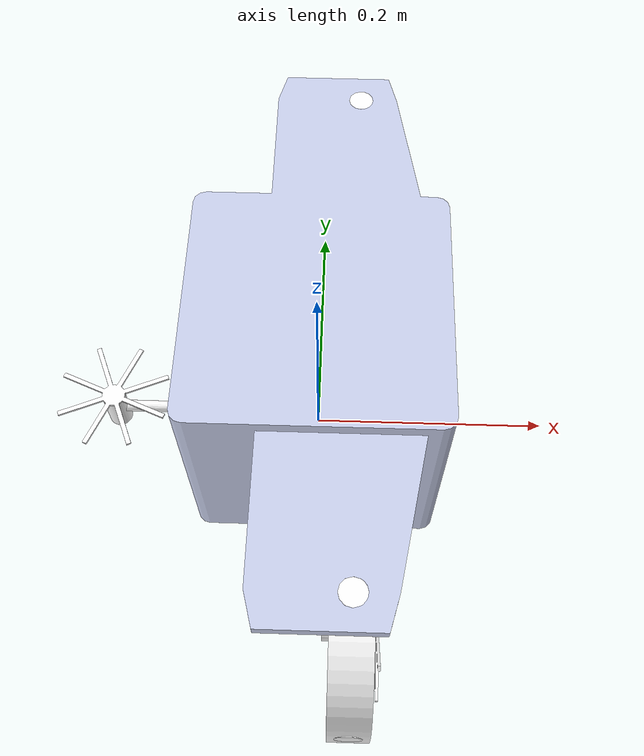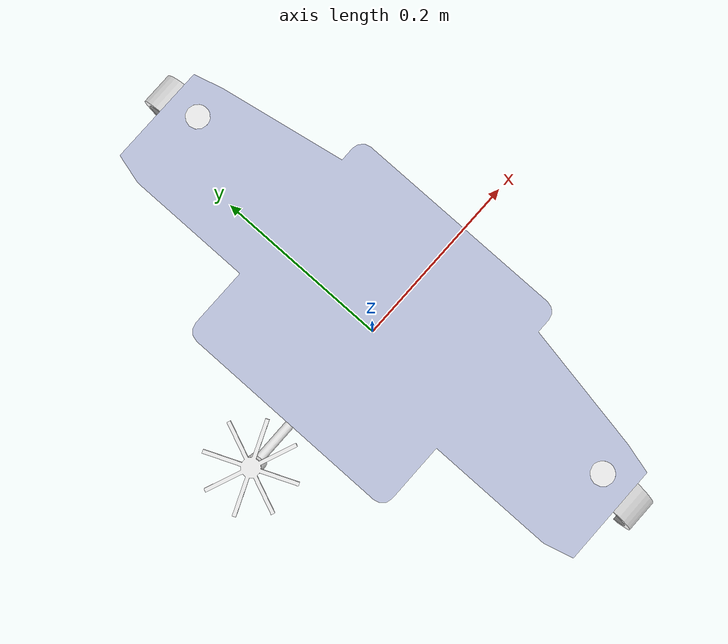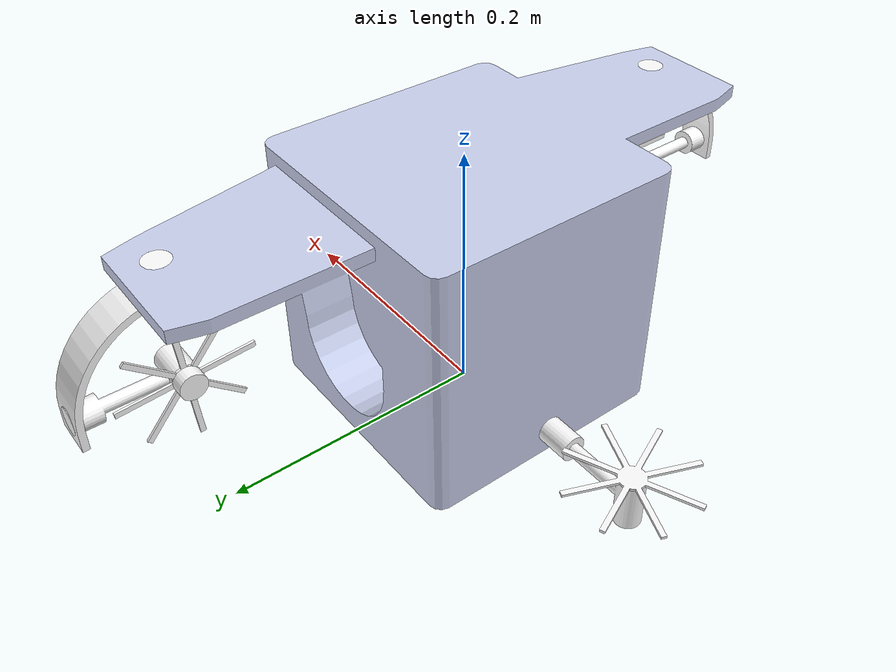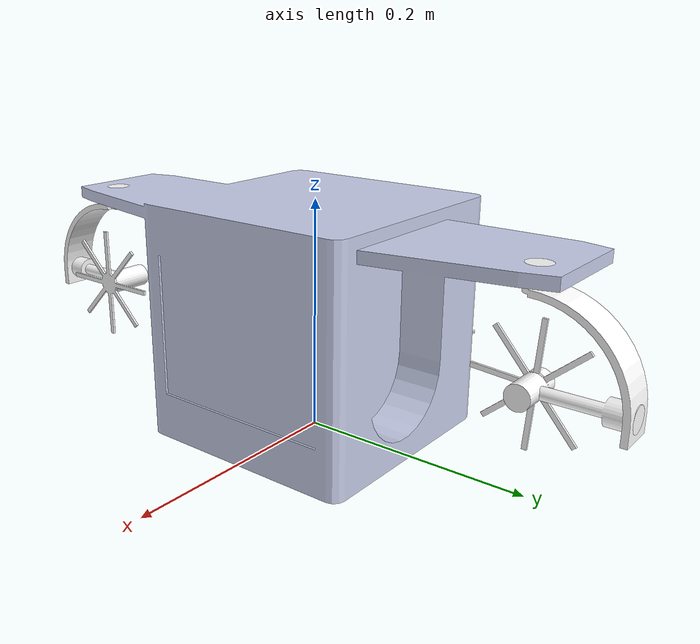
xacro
<?xml version="1.0" encoding="utf-8" ?>
<!-- |    This document was autogenerated by xacro from /home/zhitao/diskE/Project/homework1_summation/hw3_space_ws/src/mrobot_description/urdf/robot.xacro | -->
<!-- |    EDITING THIS FILE BY HAND IS NOT RECOMMENDED                                 | -->
<robot name="mrobot">
    <link name="base_link">

<inertial>
            <origin rpy="0 0 0" xyz="-0.00250187055399557 -4.16333634234434E-17 0.102093304789128" />
            <mass value="6.94149844484666" />
            <inertia ixx="0.0520196309505746" ixy="1.68127167273141E-18" ixz="-2.90897863231171E-05" iyy="0.0509630023046414" iyz="1.79335938951065E-18" izz="0.0509538546030715" />
        </inertial>

        <visual>
            <origin rpy="0 0 0" xyz="0 0 0" />
            <geometry>
                <mesh filename="package://mrobot_description/meshes/base_link.STL" />
            </geometry>
            <material name="">
                <color rgba="0.792156862745098 0.819607843137255 0.933333333333333 1" />
            </material>
        </visual>
        <collision>
            <origin rpy="0 0 0" xyz="0 0 0" />
            <geometry>
                <mesh filename="package://mrobot_description/meshes/base_link.STL" />
            </geometry>
        </collision>
    </link>
    <link name="link3_propeller_r">

<inertial>
            <origin rpy="0 0 0" xyz="0.0358547056389072 1.57481043736724E-07 0.0376222388867364" />
            <mass value="0.0232842042460977" />
            <inertia ixx="1.91884886962561E-05" ixy="-5.96973777799785E-11" ixz="-1.65633553759101E-05" iyy="3.63752103759262E-05" iyz="2.27699860606211E-11" izz="2.02836536909938E-05" />
        </inertial>

        <visual>
            <origin rpy="0 0 0" xyz="0 0 0" />
            <geometry>
                <mesh filename="package://mrobot_description/meshes/link3_propeller_r.STL" />
            </geometry>
            <material name="">
                <color rgba="1 1 1 1" />
            </material>
        </visual>
        <collision>
            <origin rpy="0 0 0" xyz="0 0 0" />
            <geometry>
                <mesh filename="package://mrobot_description/meshes/link3_propeller_r.STL" />
            </geometry>
        </collision>
    </link>
    <joint name="joint3_propeller_r" type="revolute">
        <origin rpy="3.1416 0 -1.5708" xyz="0.03 -0.21 0.19" />
        <parent link="base_link" />
        <child link="link3_propeller_r" />
        <axis xyz="0 0 -1" />
        <limit effort="4" lower="-4" upper="4" velocity="4" />
    </joint>
    <link name="link2_propeller_r">

<inertial>
            <origin rpy="0 0 0" xyz="-0.000547980281035122 5.94447525786856E-08 -0.0309642074433607" />
            <mass value="0.0217803101754596" />
            <inertia ixx="1.92811006991552E-05" ixy="7.44325461979967E-12" ixz="-2.86922802348169E-07" iyy="2.04243309946027E-05" iyz="7.14397664513597E-12" izz="2.09913107838725E-06" />
        </inertial>

        <visual>
            <origin rpy="0 0 0" xyz="0 0 0" />
            <geometry>
                <mesh filename="package://mrobot_description/meshes/link2_propeller_r.STL" />
            </geometry>
            <material name="">
                <color rgba="1 1 1 1" />
            </material>
        </visual>
        <collision>
            <origin rpy="0 0 0" xyz="0 0 0" />
            <geometry>
                <mesh filename="package://mrobot_description/meshes/link2_propeller_r.STL" />
            </geometry>
        </collision>
    </link>
    <joint name="joint2_propeller_r" type="revolute">
        <origin rpy="-1.5708 0 -1.5708" xyz="0.055 0 0.09" />
        <parent link="link3_propeller_r" />
        <child link="link2_propeller_r" />
        <axis xyz="0 0 -1" />
        <limit effort="4" lower="-4" upper="4" velocity="4" />
    </joint>
    <link name="link1_propeller_r">

<inertial>
            <origin rpy="0 0 0" xyz="-5.55111512312578E-17 2.08166817117217E-17 0.039" />
            <mass value="0.00319261117037718" />
            <inertia ixx="1.34136270464279E-06" ixy="-1.68021061924834E-21" ixz="2.64088781292146E-24" iyy="1.34136270464278E-06" iyz="-6.36026356399289E-24" izz="2.68059700183865E-06" />
        </inertial>

        <visual>
            <origin rpy="0 0 0" xyz="0 0 0" />
            <geometry>
                <mesh filename="package://mrobot_description/meshes/link1_propeller_r.STL" />
            </geometry>
            <material name="">
                <color rgba="1 1 1 1" />
            </material>
        </visual>
        <collision>
            <origin rpy="0 0 0" xyz="0 0 0" />
            <geometry>
                <mesh filename="package://mrobot_description/meshes/link1_propeller_r.STL" />
            </geometry>
        </collision>
    </link>
    <joint name="joint1_propeller_r" type="revolute">
        <origin rpy="0 1.5708 0" xyz="-0.02 0 -0.055" />
        <parent link="link2_propeller_r" />
        <child link="link1_propeller_r" />
        <axis xyz="0 0 -1" />
        <limit effort="1000" lower="-10000" upper="10000" velocity="500" />
    </joint>
    <link name="link3_propeller_l">

<inertial>
            <origin rpy="0 0 0" xyz="-0.0358547056389073 -1.57481043736724E-07 0.0376222388867364" />
            <mass value="0.0232842042460978" />
            <inertia ixx="1.91884886962561E-05" ixy="-5.96973777997515E-11" ixz="1.65633553759101E-05" iyy="3.63752103759263E-05" iyz="-2.27699860483845E-11" izz="2.02836536909938E-05" />
        </inertial>

        <visual>
            <origin rpy="0 0 0" xyz="0 0 0" />
            <geometry>
                <mesh filename="package://mrobot_description/meshes/link3_propeller_l.STL" />
            </geometry>
            <material name="">
                <color rgba="1 1 1 1" />
            </material>
        </visual>
        <collision>
            <origin rpy="0 0 0" xyz="0 0 0" />
            <geometry>
                <mesh filename="package://mrobot_description/meshes/link3_propeller_l.STL" />
            </geometry>
        </collision>
    </link>
    <joint name="joint3_propeller_l" type="revolute">
        <origin rpy="3.1416 0 -1.5708" xyz="0.03 0.21 0.19" />
        <parent link="base_link" />
        <child link="link3_propeller_l" />
        <axis xyz="0 0 -1" />
        <limit effort="4" lower="-4" upper="4" velocity="4" />
    </joint>
    <link name="link2_propeller_l">

<inertial>
            <origin rpy="0 0 0" xyz="0.000547980281035115 -5.94447525856245E-08 -0.0309642074433607" />
            <mass value="0.0217803101754596" />
            <inertia ixx="1.92811006991551E-05" ixy="7.44325462014238E-12" ixz="2.86922802348166E-07" iyy="2.04243309946027E-05" iyz="-7.14397664563089E-12" izz="2.09913107838725E-06" />
        </inertial>

        <visual>
            <origin rpy="0 0 0" xyz="0 0 0" />
            <geometry>
                <mesh filename="package://mrobot_description/meshes/link2_propeller_l.STL" />
            </geometry>
            <material name="">
                <color rgba="1 1 1 1" />
            </material>
        </visual>
        <collision>
            <origin rpy="0 0 0" xyz="0 0 0" />
            <geometry>
                <mesh filename="package://mrobot_description/meshes/link2_propeller_l.STL" />
            </geometry>
        </collision>
    </link>
    <joint name="joint2_propeller_l" type="revolute">
        <origin rpy="-1.5708 0 1.5708" xyz="-0.055 0 0.09" />
        <parent link="link3_propeller_l" />
        <child link="link2_propeller_l" />
        <axis xyz="0 0 -1" />
        <limit effort="4" lower="-4" upper="4" velocity="4" />
    </joint>
    <link name="link1_propeller_l">

<inertial>
            <origin rpy="0 0 0" xyz="-1.38777878078145E-17 2.42861286636753E-17 0.039" />
            <mass value="0.00319261117037719" />
            <inertia ixx="1.34136270464279E-06" ixy="-4.74336382510877E-21" ixz="-5.09025213552507E-22" iyy="1.34136270464278E-06" iyz="-5.05235365206194E-24" izz="2.68059700183865E-06" />
        </inertial>

        <visual>
            <origin rpy="0 0 0" xyz="0 0 0" />
            <geometry>
                <mesh filename="package://mrobot_description/meshes/link1_propeller_l.STL" />
            </geometry>
            <material name="">
                <color rgba="1 1 1 1" />
            </material>
        </visual>
        <collision>
            <origin rpy="0 0 0" xyz="0 0 0" />
            <geometry>
                <mesh filename="package://mrobot_description/meshes/link1_propeller_l.STL" />
            </geometry>
        </collision>
    </link>
    <joint name="joint1_propeller_l" type="revolute">
        <origin rpy="3.1416 -1.5708 0" xyz="-0.03 0 -0.055" />
        <parent link="link2_propeller_l" />
        <child link="link1_propeller_l" />
        <axis xyz="0 -0.011659 -0.99993" />
        <limit effort="1000" lower="-10000" upper="10000" velocity="500" />
    </joint>
    <link name="link1_b">

<inertial>
            <origin rpy="0 0 0" xyz="-0.14556481495406 -6.20150917424178E-08 0.0195495186334518" />
            <mass value="0.0264925100332698" />
            <inertia ixx="2.33590742680818E-06" ixy="-2.34168552246384E-11" ixz="-4.11034457388889E-07" iyy="3.38737961647893E-05" iyz="-9.44647937670339E-12" izz="3.27294154174667E-05" />
        </inertial>

        <visual>
            <origin rpy="0 0 0" xyz="0 0 0" />
            <geometry>
                <mesh filename="package://mrobot_description/meshes/link1_b.STL" />
            </geometry>
            <material name="">
                <color rgba="1 1 1 1" />
            </material>
        </visual>
        <collision>
            <origin rpy="0 0 0" xyz="0 0 0" />
            <geometry>
                <mesh filename="package://mrobot_description/meshes/link1_b.STL" />
            </geometry>
        </collision>
    </link>
    <joint name="joint1_b" type="fixed">
        <origin rpy="0 0 0" xyz="0 0 0" />
        <parent link="base_link" />
        <child link="link1_b" />
        <axis xyz="0 0 0" />
        <limit effort="4" lower="-4" upper="4" velocity="4" />
    </joint>
    <link name="link_b">

<inertial>
            <origin rpy="0 0 0" xyz="1.38777878078145E-17 2.77555756156289E-17 0.039" />
            <mass value="0.00319261117037719" />
            <inertia ixx="1.34136270464279E-06" ixy="4.38147230711682E-21" ixz="2.16313585702643E-22" iyy="1.34136270464278E-06" iyz="1.80899528309417E-22" izz="2.68059700183865E-06" />
        </inertial>

        <visual>
            <origin rpy="0 0 0" xyz="0 0 0" />
            <geometry>
                <mesh filename="package://mrobot_description/meshes/link_b.STL" />
            </geometry>
            <material name="">
                <color rgba="1 1 1 1" />
            </material>
        </visual>
        <collision>
            <origin rpy="0 0 0" xyz="0 0 0" />
            <geometry>
                <mesh filename="package://mrobot_description/meshes/link_b.STL" />
            </geometry>
        </collision>
    </link>
    <joint name="joint_b" type="revolute">
        <origin rpy="0 0 1.5708" xyz="-0.18 0 0" />
        <parent link="link1_b" />
        <child link="link_b" />
        <axis xyz="0 0 -1" />
        <limit effort="1000" lower="-10000" upper="10000" velocity="500" />
    </joint>

    <gazebo reference="base_link">
        <material>Gazebo/Grey</material>
    </gazebo>

    <gazebo reference="link3_propeller_r">
        <material>Gazebo/Red</material>
    </gazebo>

    <gazebo reference="link3_propeller_l">
        <material>Gazebo/Red</material>
    </gazebo>

    <gazebo reference="base_link">
        <turnGravityOff>true</turnGravityOff>
    </gazebo>

    <gazebo reference="link3_propeller_r">
        <turnGravityOff>true</turnGravityOff>
    </gazebo>

    <gazebo reference="link2_propeller_r">
        <turnGravityOff>true</turnGravityOff>
    </gazebo>

    <gazebo reference="link1_propeller_r">
        <turnGravityOff>true</turnGravityOff>
    </gazebo>

    <gazebo reference="link3_propeller_l">
        <turnGravityOff>true</turnGravityOff>
    </gazebo>

    <gazebo reference="link2_propeller_l">
        <turnGravityOff>true</turnGravityOff>
    </gazebo>

    <gazebo reference="link1_propeller_l">
        <turnGravityOff>true</turnGravityOff>
    </gazebo>

    <gazebo reference="link1_b">
        <turnGravityOff>true</turnGravityOff>
    </gazebo>

    <gazebo reference="link_b">
        <turnGravityOff>true</turnGravityOff>
    </gazebo>

<transmission name="trans_joint3_propeller_r">
        <type>transmission_interface/SimpleTransmission</type>
        <joint name="joint3_propeller_r">
            <hardwareInterface>hardware_interface/PositionJointInterface</hardwareInterface>
        </joint>
        <actuator name="joint3_propeller_r_motor">
            <hardwareInterface>hardware_interface/PositionJointInterface</hardwareInterface>
            <mechanicalReduction>1</mechanicalReduction>
        </actuator>
    </transmission>
    <transmission name="trans_joint2_propeller_r">
        <type>transmission_interface/SimpleTransmission</type>
        <joint name="joint2_propeller_r">
            <hardwareInterface>hardware_interface/PositionJointInterface</hardwareInterface>
        </joint>
        <actuator name="joint2_propeller_r_motor">
            <hardwareInterface>hardware_interface/PositionJointInterface</hardwareInterface>
            <mechanicalReduction>1</mechanicalReduction>
        </actuator>
    </transmission>
    <transmission name="trans_joint1_propeller_r">
        <type>transmission_interface/SimpleTransmission</type>
        <joint name="joint1_propeller_r">
            <hardwareInterface>hardware_interface/PositionJointInterface</hardwareInterface>
        </joint>
        <actuator name="joint1_propeller_r_motor">
            <hardwareInterface>hardware_interface/PositionJointInterface</hardwareInterface>
            <mechanicalReduction>1</mechanicalReduction>
        </actuator>
    </transmission>
    <transmission name="trans_joint3_propeller_l">
        <type>transmission_interface/SimpleTransmission</type>
        <joint name="joint3_propeller_l">
            <hardwareInterface>hardware_interface/PositionJointInterface</hardwareInterface>
        </joint>
        <actuator name="joint3_propeller_l_motor">
            <hardwareInterface>hardware_interface/PositionJointInterface</hardwareInterface>
            <mechanicalReduction>1</mechanicalReduction>
        </actuator>
    </transmission>
    <transmission name="trans_joint2_propeller_l">
        <type>transmission_interface/SimpleTransmission</type>
        <joint name="joint2_propeller_l">
            <hardwareInterface>hardware_interface/PositionJointInterface</hardwareInterface>
        </joint>
        <actuator name="joint2_propeller_l_motor">
            <hardwareInterface>hardware_interface/PositionJointInterface</hardwareInterface>
            <mechanicalReduction>1</mechanicalReduction>
        </actuator>
    </transmission>
    <transmission name="trans_joint1_propeller_l">
        <type>transmission_interface/SimpleTransmission</type>
        <joint name="joint1_propeller_l">
            <hardwareInterface>hardware_interface/PositionJointInterface</hardwareInterface>
        </joint>
        <actuator name="joint1_propeller_l_motor">
            <hardwareInterface>hardware_interface/PositionJointInterface</hardwareInterface>
            <mechanicalReduction>1</mechanicalReduction>
        </actuator>
    </transmission>
    <transmission name="trans_joint_b">
        <type>transmission_interface/SimpleTransmission</type>
        <joint name="joint_b">
            <hardwareInterface>hardware_interface/PositionJointInterface</hardwareInterface>
        </joint>
        <actuator name="joint_b_motor">
            <hardwareInterface>hardware_interface/PositionJointInterface</hardwareInterface>
            <mechanicalReduction>1</mechanicalReduction>
        </actuator>
    </transmission>
    <gazebo>
        <plugin name="gazebo_ros_control" filename="libgazebo_ros_control.so">
            <robotNamespace>/</robotNamespace>
        </plugin>
    </gazebo>
</robot>
